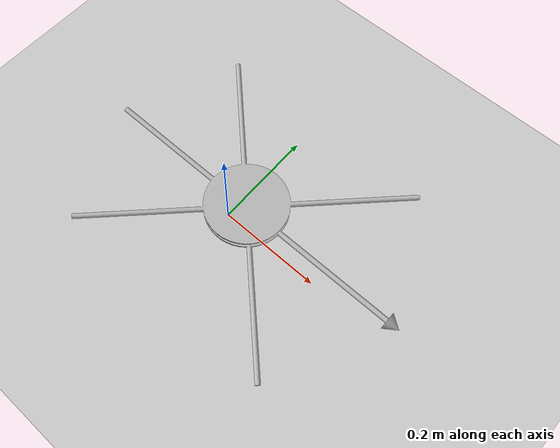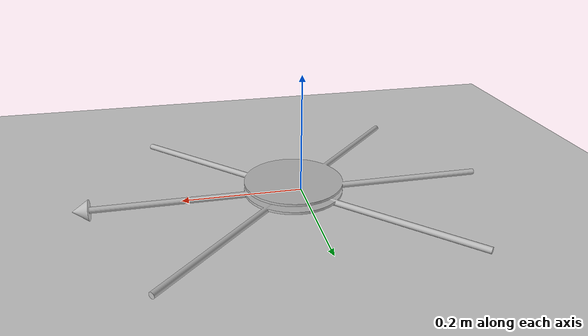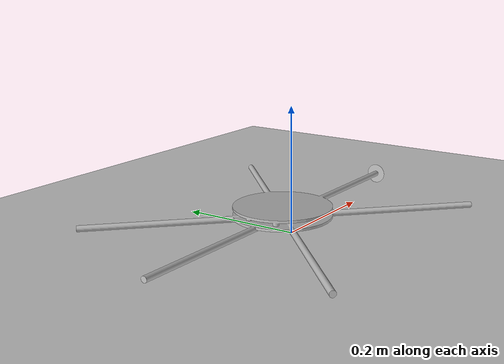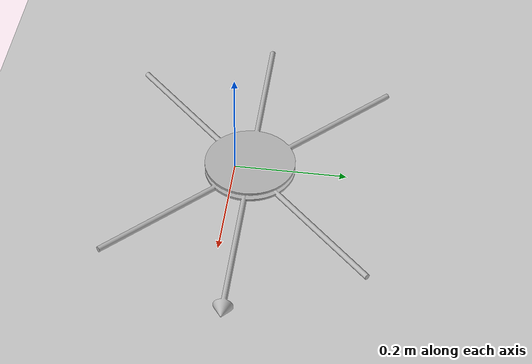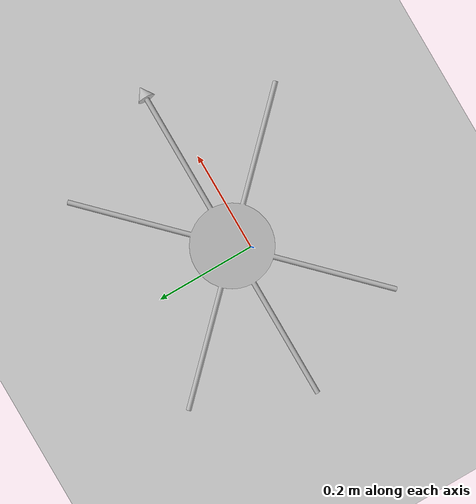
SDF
<?xml version="1.0"?>
<sdf version="1.4">
  <world name="default">
    <include>
      <uri>model://ground_plane</uri>
    </include>
    <include>
      <uri>model://sun</uri>
    </include>
    <model name="hexa">
      <pose>0 0 0 0 0 0</pose>
      <static>true</static>
      <link name="body">
        <visual name="visual">
          <geometry>
            <mesh><uri>file://quad.STL</uri>
             <scale>0.001 0.001 0.001</scale>
             </mesh>
          </geometry>
          <pose>-0.3 -0.2 0 0 0 0</pose>
        </visual>
      </link>
    </model>
  </world>
</sdf>
